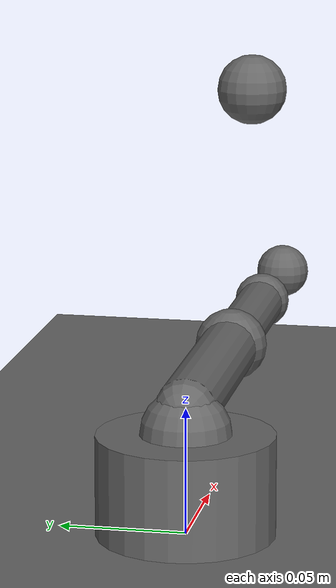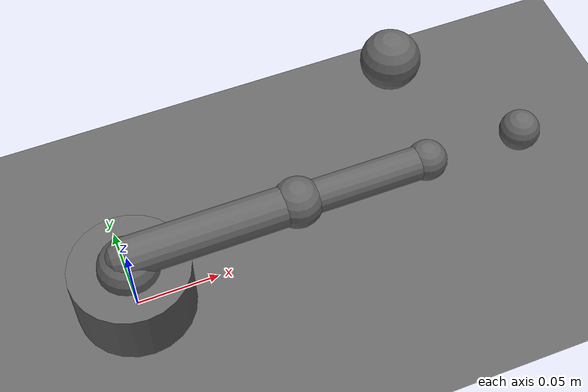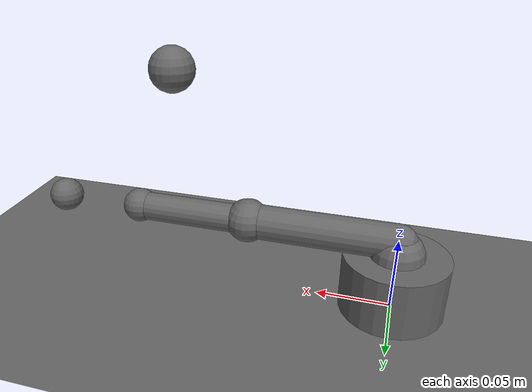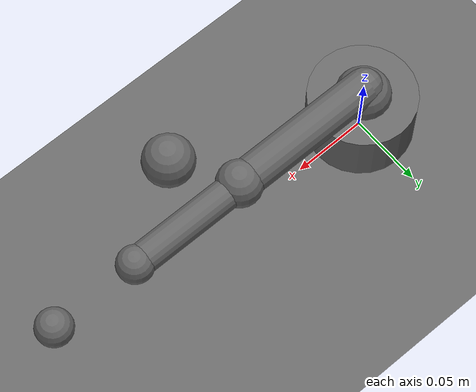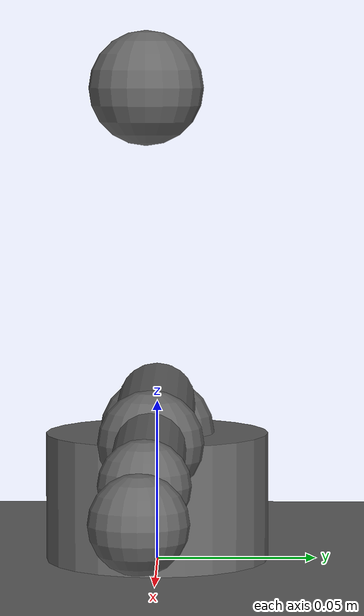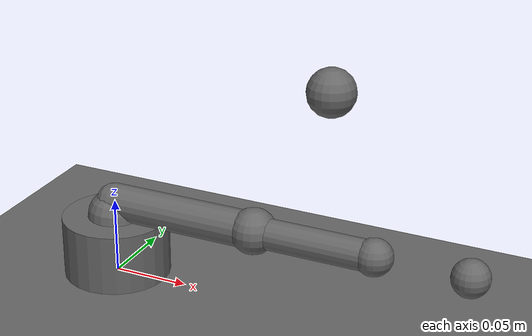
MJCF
<mujoco model="arm3d_reach">

  <compiler angle="radian" coordinate="local"/>

  <option timestep="0.01" gravity="0 0 -9.81" integrator="RK4"/>

  <default>
    <joint armature="0.1" damping="1.0" limited="true"/>
    <geom contype="0" conaffinity="0" rgba="0.4 0.4 0.4 1"/>
    <motor ctrllimited="true" ctrlrange="-1 1"/>
  </default>

  <asset>
    <texture name="grid_tex" type="2d" builtin="checker"
             rgb1="0.15 0.15 0.2" rgb2="0.2 0.2 0.25"
             width="512" height="512"/>
    <material name="grid_mat" texture="grid_tex"
              texrepeat="8 8" reflectance="0.1"/>
    <material name="arm_mat" rgba="0.3 0.3 0.35 1" specular="0.5" shininess="0.3"/>
    <material name="joint_mat" rgba="0.2 0.5 0.8 1" specular="0.6" shininess="0.4"/>
    <material name="ee_mat" rgba="0.1 0.8 0.3 1" specular="0.7" shininess="0.5"/>
    <material name="target_mat" rgba="0.9 0.2 0.15 1" specular="0.8" shininess="0.6"/>
  </asset>

  <worldbody>
    <!-- Ground plane -->
    <geom name="floor" type="plane" size="0.5 0.5 0.01"
          material="grid_mat" pos="0 0 0"/>

    <!-- Lighting -->
    <light name="top_light" pos="0 0 1.5" dir="0 0 -1"
           diffuse="0.8 0.8 0.8" specular="0.3 0.3 0.3" directional="true"/>
    <light name="front_light" pos="0.5 -0.5 0.8" dir="-0.5 0.5 -0.5"
           diffuse="0.4 0.4 0.4" directional="false"/>

    <!-- Camera: third-person 45° angle (matches real webcam placement) -->
    <camera name="fixed_cam" pos="0.35 -0.45 0.4" xyaxes="0.8 0.6 0 -0.2 0.3 0.9"
            fovy="60"/>

    <!-- TARGET SPHERE (randomly repositioned by env code)   -->
    <body name="target" pos="0.15 0.0 0.15">
      <geom name="target_geom" type="sphere" size="0.015"
            material="target_mat" contype="0" conaffinity="0"/>
      <!-- Site for distance computation -->
      <site name="target_site" size="0.001"/>
    </body>

    <!-- ROBOT ARM                                           -->

    <!-- Base mount (fixed to floor) -->
    <body name="base" pos="0 0 0.02">
      <geom name="base_geom" type="cylinder" size="0.035 0.02"
            material="arm_mat"/>

      <!-- Joint 1: Base yaw (Z-axis rotation) -->
      <body name="link1" pos="0 0 0.02">
        <joint name="base_yaw" type="hinge" axis="0 0 1"
               range="-3.14159 3.14159" ref="0"/>
        <geom name="link1_joint" type="sphere" size="0.018"
              material="joint_mat"/>

        <!-- Upper arm segment -->
        <body name="upper_arm" pos="0 0 0.01">
          <geom name="upper_arm_geom" type="capsule"
                fromto="0 0 0 0.1 0 0.0" size="0.012"
                material="arm_mat"/>

          <!-- Joint 2: Shoulder pitch (Y-axis rotation) -->
          <body name="link2" pos="0.1 0 0.0">
            <joint name="shoulder_pitch" type="hinge" axis="0 1 0"
                   range="-1.5708 1.5708" ref="0"/>
            <geom name="link2_joint" type="sphere" size="0.015"
                  material="joint_mat"/>

            <!-- Forearm segment -->
            <body name="forearm" pos="0 0 0">
              <geom name="forearm_geom" type="capsule"
                    fromto="0 0 0 0.08 0 0.0" size="0.010"
                    material="arm_mat"/>

              <!-- Joint 3: Elbow pitch (Y-axis rotation) -->
              <body name="link3" pos="0.08 0 0.0">
                <joint name="elbow_pitch" type="hinge" axis="0 1 0"
                       range="-2.3562 2.3562" ref="0"/>
                <geom name="link3_joint" type="sphere" size="0.012"
                      material="joint_mat"/>

                <!-- End-effector (finger tip) -->
                <body name="end_effector" pos="0.06 0 0">
                  <geom name="ee_geom" type="sphere" size="0.012"
                        material="ee_mat"/>
                  <!-- Site for distance computation -->
                  <site name="ee_site" size="0.001"/>
                </body>
              </body>
            </body>
          </body>
        </body>
      </body>
    </body>
  </worldbody>

  <!-- ACTUATORS: position-controlled (like real servos)   -->
  <actuator>
    <motor name="base_yaw_motor" joint="base_yaw" gear="5"/>
    <motor name="shoulder_pitch_motor" joint="shoulder_pitch" gear="5"/>
    <motor name="elbow_pitch_motor" joint="elbow_pitch" gear="5"/>
  </actuator>
</mujoco>
